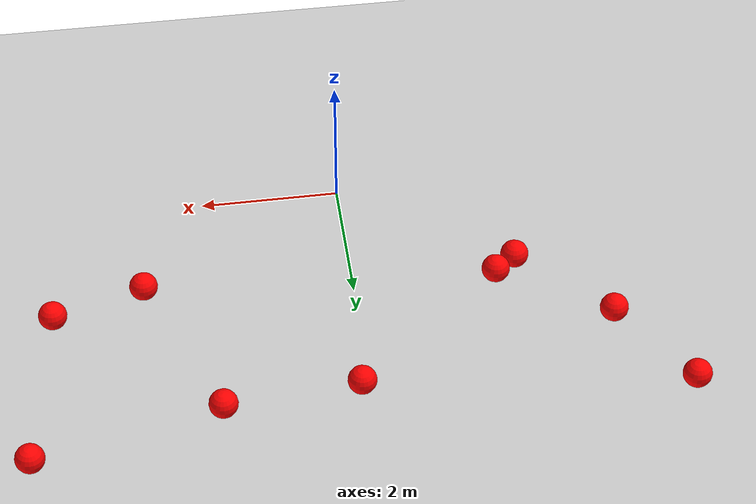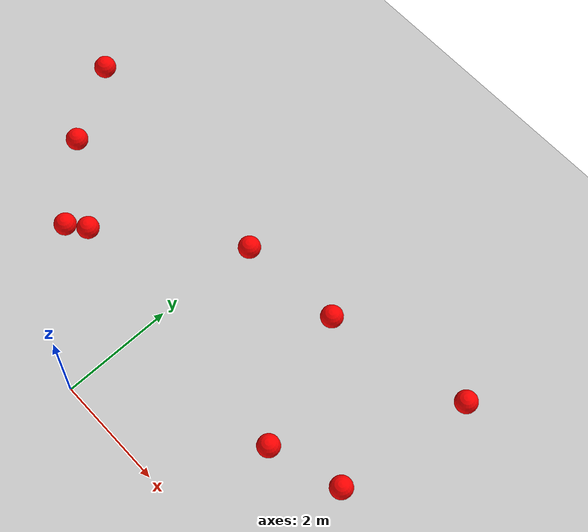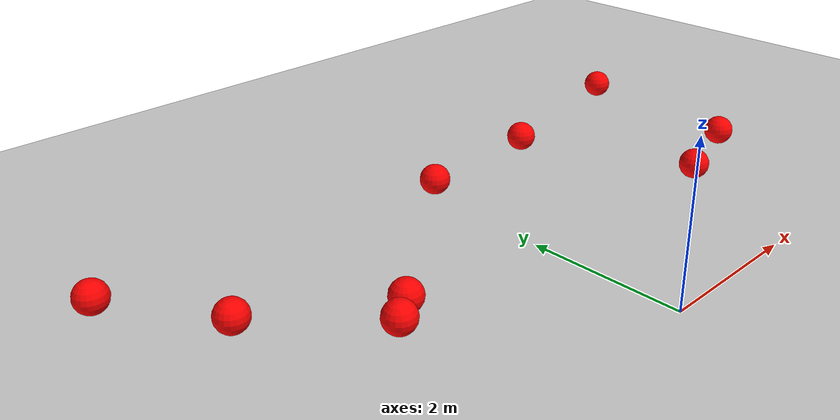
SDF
<sdf version="1.6">
 <world name="default">
  <model name="ground_plane">
   <static>1</static>
   <link name="link">
    <collision name="collision">
     <geometry><plane><normal>0 0 1</normal><size>100 100</size></plane></geometry>
     <surface><friction><ode><mu>100</mu><mu2>50</mu2></ode></friction></surface>
    </collision>
    <visual name="visual">
     <cast_shadows>0</cast_shadows>
     <geometry><plane><normal>0 0 1</normal><size>100 100</size></plane></geometry>
     <material>
      <script><uri>file://media/materials/scripts/gazebo.material</uri><name>Gazebo/Grey</name></script>
     </material>
    </visual>
   </link>
  </model>
  <model name="redball">
   <link name="link">
    <pose>0 0 0.2 0 -0 0</pose>
    <inertial>
     <mass>1</mass>
     <inertia><ixx>0.1</ixx><ixy>0</ixy><ixz>0</ixz><iyy>0.1</iyy><iyz>0</iyz><izz>0.1</izz></inertia>
    </inertial>
    <visual name="visual">
     <geometry><sphere><radius>0.2</radius></sphere></geometry>
     <material>
      <script><name>Gazebo/Grey</name><uri>file://media/materials/scripts/gazebo.material</uri></script>
      <ambient>1 0 0 1</ambient>
      <diffuse>1 0 0 1</diffuse>
      <specular>1 0 0 1</specular>
      <emissive>0 0 0 1</emissive>
      <shader type="vertex"><normal_map>__default__</normal_map></shader>
     </material>
    </visual>
    <collision name="collision">
     <geometry><sphere><radius>0.2</radius></sphere></geometry>
     <surface>
      <friction>
       <ode><mu>1</mu><mu2>1</mu2><fdir1>0 0 0</fdir1><slip1>0</slip1><slip2>0</slip2></ode>
       <torsional>
        <coefficient>1</coefficient>
        <patch_radius>0</patch_radius>
        <surface_radius>0</surface_radius>
        <use_patch_radius>1</use_patch_radius>
        <ode><slip>0</slip></ode>
       </torsional>
      </friction>
      <bounce><restitution_coefficient>0</restitution_coefficient><threshold>1e+06</threshold></bounce>
      <contact>
       <collide_without_contact>0</collide_without_contact>
       <collide_without_contact_bitmask>1</collide_without_contact_bitmask>
       <collide_bitmask>1</collide_bitmask>
       <ode>
        <soft_cfm>0</soft_cfm>
        <soft_erp>0.2</soft_erp>
        <kp>1e+13</kp>
        <kd>1</kd>
        <max_vel>0.01</max_vel>
        <min_depth>0</min_depth>
       </ode>
       <bullet>
        <split_impulse>1</split_impulse>
        <split_impulse_penetration_threshold>-0.01</split_impulse_penetration_threshold>
        <soft_cfm>0</soft_cfm>
        <soft_erp>0.2</soft_erp>
        <kp>1e+13</kp>
        <kd>1</kd>
       </bullet>
      </contact>
     </surface>
    </collision>
   </link>
   <static>0</static>
   <pose>4.553 4.57885 0.000107 1e-06 -0.032773 0</pose>
  </model>
  <model name="redball_1">
   <link name="link">
    <pose>0 0 0.2 0 -0 0</pose>
    <inertial>
     <mass>1</mass>
     <inertia><ixx>0.1</ixx><ixy>0</ixy><ixz>0</ixz><iyy>0.1</iyy><iyz>0</iyz><izz>0.1</izz></inertia>
    </inertial>
    <visual name="visual">
     <geometry><sphere><radius>0.2</radius></sphere></geometry>
     <material>
      <script><name>Gazebo/Grey</name><uri>file://media/materials/scripts/gazebo.material</uri></script>
      <ambient>1 0 0 1</ambient>
      <diffuse>1 0 0 1</diffuse>
      <specular>1 0 0 1</specular>
      <emissive>0 0 0 1</emissive>
      <shader type="vertex"><normal_map>__default__</normal_map></shader>
     </material>
    </visual>
    <collision name="collision">
     <geometry><sphere><radius>0.2</radius></sphere></geometry>
     <surface>
      <friction>
       <ode><mu>1</mu><mu2>1</mu2><fdir1>0 0 0</fdir1><slip1>0</slip1><slip2>0</slip2></ode>
       <torsional>
        <coefficient>1</coefficient>
        <patch_radius>0</patch_radius>
        <surface_radius>0</surface_radius>
        <use_patch_radius>1</use_patch_radius>
        <ode><slip>0</slip></ode>
       </torsional>
      </friction>
      <bounce><restitution_coefficient>0</restitution_coefficient><threshold>1e+06</threshold></bounce>
      <contact>
       <collide_without_contact>0</collide_without_contact>
       <collide_without_contact_bitmask>1</collide_without_contact_bitmask>
       <collide_bitmask>1</collide_bitmask>
       <ode>
        <soft_cfm>0</soft_cfm>
        <soft_erp>0.2</soft_erp>
        <kp>1e+13</kp>
        <kd>1</kd>
        <max_vel>0.01</max_vel>
        <min_depth>0</min_depth>
       </ode>
       <bullet>
        <split_impulse>1</split_impulse>
        <split_impulse_penetration_threshold>-0.01</split_impulse_penetration_threshold>
        <soft_cfm>0</soft_cfm>
        <soft_erp>0.2</soft_erp>
        <kp>1e+13</kp>
        <kd>1</kd>
       </bullet>
      </contact>
     </surface>
    </collision>
   </link>
   <static>0</static>
   <pose>-2.01921 2.03663 0 0 -0 0</pose>
  </model>
  <model name="redball_2">
   <link name="link">
    <pose>0 0 0.2 0 -0 0</pose>
    <inertial>
     <mass>1</mass>
     <inertia><ixx>0.1</ixx><ixy>0</ixy><ixz>0</ixz><iyy>0.1</iyy><iyz>0</iyz><izz>0.1</izz></inertia>
    </inertial>
    <visual name="visual">
     <geometry><sphere><radius>0.2</radius></sphere></geometry>
     <material>
      <script><name>Gazebo/Grey</name><uri>file://media/materials/scripts/gazebo.material</uri></script>
      <ambient>1 0 0 1</ambient>
      <diffuse>1 0 0 1</diffuse>
      <specular>1 0 0 1</specular>
      <emissive>0 0 0 1</emissive>
      <shader type="vertex"><normal_map>__default__</normal_map></shader>
     </material>
    </visual>
    <collision name="collision">
     <geometry><sphere><radius>0.2</radius></sphere></geometry>
     <surface>
      <friction>
       <ode><mu>1</mu><mu2>1</mu2><fdir1>0 0 0</fdir1><slip1>0</slip1><slip2>0</slip2></ode>
       <torsional>
        <coefficient>1</coefficient>
        <patch_radius>0</patch_radius>
        <surface_radius>0</surface_radius>
        <use_patch_radius>1</use_patch_radius>
        <ode><slip>0</slip></ode>
       </torsional>
      </friction>
      <bounce><restitution_coefficient>0</restitution_coefficient><threshold>1e+06</threshold></bounce>
      <contact>
       <collide_without_contact>0</collide_without_contact>
       <collide_without_contact_bitmask>1</collide_without_contact_bitmask>
       <collide_bitmask>1</collide_bitmask>
       <ode>
        <soft_cfm>0</soft_cfm>
        <soft_erp>0.2</soft_erp>
        <kp>1e+13</kp>
        <kd>1</kd>
        <max_vel>0.01</max_vel>
        <min_depth>0</min_depth>
       </ode>
       <bullet>
        <split_impulse>1</split_impulse>
        <split_impulse_penetration_threshold>-0.01</split_impulse_penetration_threshold>
        <soft_cfm>0</soft_cfm>
        <soft_erp>0.2</soft_erp>
        <kp>1e+13</kp>
        <kd>1</kd>
       </bullet>
      </contact>
     </surface>
    </collision>
   </link>
   <static>0</static>
   <pose>-2.33531 1.78833 0 0 -0 0</pose>
  </model>
  <model name="redball_2_clone_2">
   <link name="link">
    <pose>0 0 0.2 0 -0 0</pose>
    <inertial>
     <mass>1</mass>
     <inertia><ixx>0.1</ixx><ixy>0</ixy><ixz>0</ixz><iyy>0.1</iyy><iyz>0</iyz><izz>0.1</izz></inertia>
    </inertial>
    <visual name="visual">
     <geometry><sphere><radius>0.2</radius></sphere></geometry>
     <material>
      <script><name>Gazebo/Grey</name><uri>file://media/materials/scripts/gazebo.material</uri></script>
      <ambient>1 0 0 1</ambient>
      <diffuse>1 0 0 1</diffuse>
      <specular>1 0 0 1</specular>
      <emissive>0 0 0 1</emissive>
      <shader type="vertex"><normal_map>__default__</normal_map></shader>
     </material>
    </visual>
    <collision name="collision">
     <geometry><sphere><radius>0.2</radius></sphere></geometry>
     <surface>
      <friction>
       <ode><mu>1</mu><mu2>1</mu2><fdir1>0 0 0</fdir1><slip1>0</slip1><slip2>0</slip2></ode>
       <torsional>
        <coefficient>1</coefficient>
        <patch_radius>0</patch_radius>
        <surface_radius>0</surface_radius>
        <use_patch_radius>1</use_patch_radius>
        <ode><slip>0</slip></ode>
       </torsional>
      </friction>
      <bounce><restitution_coefficient>0</restitution_coefficient><threshold>1e+06</threshold></bounce>
      <contact>
       <collide_without_contact>0</collide_without_contact>
       <collide_without_contact_bitmask>1</collide_without_contact_bitmask>
       <collide_bitmask>1</collide_bitmask>
       <ode>
        <soft_cfm>0</soft_cfm>
        <soft_erp>0.2</soft_erp>
        <kp>1e+13</kp>
        <kd>1</kd>
        <max_vel>0.01</max_vel>
        <min_depth>0</min_depth>
       </ode>
       <bullet>
        <split_impulse>1</split_impulse>
        <split_impulse_penetration_threshold>-0.01</split_impulse_penetration_threshold>
        <soft_cfm>0</soft_cfm>
        <soft_erp>0.2</soft_erp>
        <kp>1e+13</kp>
        <kd>1</kd>
       </bullet>
      </contact>
     </surface>
    </collision>
   </link>
   <static>0</static>
   <pose>4.20871 2.10315 0 0 -0 0</pose>
  </model>
  <model name="redball_2_clone_3">
   <link name="link">
    <pose>0 0 0.2 0 -0 0</pose>
    <inertial>
     <mass>1</mass>
     <inertia><ixx>0.1</ixx><ixy>0</ixy><ixz>0</ixz><iyy>0.1</iyy><iyz>0</iyz><izz>0.1</izz></inertia>
    </inertial>
    <visual name="visual">
     <geometry><sphere><radius>0.2</radius></sphere></geometry>
     <material>
      <script><name>Gazebo/Grey</name><uri>file://media/materials/scripts/gazebo.material</uri></script>
      <ambient>1 0 0 1</ambient>
      <diffuse>1 0 0 1</diffuse>
      <specular>1 0 0 1</specular>
      <emissive>0 0 0 1</emissive>
      <shader type="vertex"><normal_map>__default__</normal_map></shader>
     </material>
    </visual>
    <collision name="collision">
     <geometry><sphere><radius>0.2</radius></sphere></geometry>
     <surface>
      <friction>
       <ode><mu>1</mu><mu2>1</mu2><fdir1>0 0 0</fdir1><slip1>0</slip1><slip2>0</slip2></ode>
       <torsional>
        <coefficient>1</coefficient>
        <patch_radius>0</patch_radius>
        <surface_radius>0</surface_radius>
        <use_patch_radius>1</use_patch_radius>
        <ode><slip>0</slip></ode>
       </torsional>
      </friction>
      <bounce><restitution_coefficient>0</restitution_coefficient><threshold>1e+06</threshold></bounce>
      <contact>
       <collide_without_contact>0</collide_without_contact>
       <collide_without_contact_bitmask>1</collide_without_contact_bitmask>
       <collide_bitmask>1</collide_bitmask>
       <ode>
        <soft_cfm>0</soft_cfm>
        <soft_erp>0.2</soft_erp>
        <kp>1e+13</kp>
        <kd>1</kd>
        <max_vel>0.01</max_vel>
        <min_depth>0</min_depth>
       </ode>
       <bullet>
        <split_impulse>1</split_impulse>
        <split_impulse_penetration_threshold>-0.01</split_impulse_penetration_threshold>
        <soft_cfm>0</soft_cfm>
        <soft_erp>0.2</soft_erp>
        <kp>1e+13</kp>
        <kd>1</kd>
       </bullet>
      </contact>
     </surface>
    </collision>
   </link>
   <static>0</static>
   <pose>2 4 0 0 -0 0</pose>
  </model>
  <model name="redball_2_clone_4">
   <link name="link">
    <pose>0 0 0.2 0 -0 0</pose>
    <inertial>
     <mass>1</mass>
     <inertia><ixx>0.1</ixx><ixy>0</ixy><ixz>0</ixz><iyy>0.1</iyy><iyz>0</iyz><izz>0.1</izz></inertia>
    </inertial>
    <visual name="visual">
     <geometry><sphere><radius>0.2</radius></sphere></geometry>
     <material>
      <script><name>Gazebo/Grey</name><uri>file://media/materials/scripts/gazebo.material</uri></script>
      <ambient>1 0 0 1</ambient>
      <diffuse>1 0 0 1</diffuse>
      <specular>1 0 0 1</specular>
      <emissive>0 0 0 1</emissive>
      <shader type="vertex"><normal_map>__default__</normal_map></shader>
     </material>
    </visual>
    <collision name="collision">
     <geometry><sphere><radius>0.2</radius></sphere></geometry>
     <surface>
      <friction>
       <ode><mu>1</mu><mu2>1</mu2><fdir1>0 0 0</fdir1><slip1>0</slip1><slip2>0</slip2></ode>
       <torsional>
        <coefficient>1</coefficient>
        <patch_radius>0</patch_radius>
        <surface_radius>0</surface_radius>
        <use_patch_radius>1</use_patch_radius>
        <ode><slip>0</slip></ode>
       </torsional>
      </friction>
      <bounce><restitution_coefficient>0</restitution_coefficient><threshold>1e+06</threshold></bounce>
      <contact>
       <collide_without_contact>0</collide_without_contact>
       <collide_without_contact_bitmask>1</collide_without_contact_bitmask>
       <collide_bitmask>1</collide_bitmask>
       <ode>
        <soft_cfm>0</soft_cfm>
        <soft_erp>0.2</soft_erp>
        <kp>1e+13</kp>
        <kd>1</kd>
        <max_vel>0.01</max_vel>
        <min_depth>0</min_depth>
       </ode>
       <bullet>
        <split_impulse>1</split_impulse>
        <split_impulse_penetration_threshold>-0.01</split_impulse_penetration_threshold>
        <soft_cfm>0</soft_cfm>
        <soft_erp>0.2</soft_erp>
        <kp>1e+13</kp>
        <kd>1</kd>
       </bullet>
      </contact>
     </surface>
    </collision>
   </link>
   <static>0</static>
   <pose>-4.34673 4.33403 0 0 -0 0</pose>
  </model>
  <model name="redball_2_clone_7">
   <link name="link">
    <pose>0 0 0.2 0 -0 0</pose>
    <inertial>
     <mass>1</mass>
     <inertia><ixx>0.1</ixx><ixy>0</ixy><ixz>0</ixz><iyy>0.1</iyy><iyz>0</iyz><izz>0.1</izz></inertia>
    </inertial>
    <visual name="visual">
     <geometry><sphere><radius>0.2</radius></sphere></geometry>
     <material>
      <script><name>Gazebo/Grey</name><uri>file://media/materials/scripts/gazebo.material</uri></script>
      <ambient>1 0 0 1</ambient>
      <diffuse>1 0 0 1</diffuse>
      <specular>1 0 0 1</specular>
      <emissive>0 0 0 1</emissive>
      <shader type="vertex"><normal_map>__default__</normal_map></shader>
     </material>
    </visual>
    <collision name="collision">
     <geometry><sphere><radius>0.2</radius></sphere></geometry>
     <surface>
      <friction>
       <ode><mu>1</mu><mu2>1</mu2><fdir1>0 0 0</fdir1><slip1>0</slip1><slip2>0</slip2></ode>
       <torsional>
        <coefficient>1</coefficient>
        <patch_radius>0</patch_radius>
        <surface_radius>0</surface_radius>
        <use_patch_radius>1</use_patch_radius>
        <ode><slip>0</slip></ode>
       </torsional>
      </friction>
      <bounce><restitution_coefficient>0</restitution_coefficient><threshold>1e+06</threshold></bounce>
      <contact>
       <collide_without_contact>0</collide_without_contact>
       <collide_without_contact_bitmask>1</collide_without_contact_bitmask>
       <collide_bitmask>1</collide_bitmask>
       <ode>
        <soft_cfm>0</soft_cfm>
        <soft_erp>0.2</soft_erp>
        <kp>1e+13</kp>
        <kd>1</kd>
        <max_vel>0.01</max_vel>
        <min_depth>0</min_depth>
       </ode>
       <bullet>
        <split_impulse>1</split_impulse>
        <split_impulse_penetration_threshold>-0.01</split_impulse_penetration_threshold>
        <soft_cfm>0</soft_cfm>
        <soft_erp>0.2</soft_erp>
        <kp>1e+13</kp>
        <kd>1</kd>
       </bullet>
      </contact>
     </surface>
    </collision>
   </link>
   <static>0</static>
   <pose>2.93659 1.71357 0 0 -0 0</pose>
  </model>
  <model name="redball_2_clone_8">
   <link name="link">
    <pose>0 0 0.2 0 -0 0</pose>
    <inertial>
     <mass>1</mass>
     <inertia><ixx>0.1</ixx><ixy>0</ixy><ixz>0</ixz><iyy>0.1</iyy><iyz>0</iyz><izz>0.1</izz></inertia>
    </inertial>
    <visual name="visual">
     <geometry><sphere><radius>0.2</radius></sphere></geometry>
     <material>
      <script><name>Gazebo/Grey</name><uri>file://media/materials/scripts/gazebo.material</uri></script>
      <ambient>1 0 0 1</ambient>
      <diffuse>1 0 0 1</diffuse>
      <specular>1 0 0 1</specular>
      <emissive>0 0 0 1</emissive>
      <shader type="vertex"><normal_map>__default__</normal_map></shader>
     </material>
    </visual>
    <collision name="collision">
     <geometry><sphere><radius>0.2</radius></sphere></geometry>
     <surface>
      <friction>
       <ode><mu>1</mu><mu2>1</mu2><fdir1>0 0 0</fdir1><slip1>0</slip1><slip2>0</slip2></ode>
       <torsional>
        <coefficient>1</coefficient>
        <patch_radius>0</patch_radius>
        <surface_radius>0</surface_radius>
        <use_patch_radius>1</use_patch_radius>
        <ode><slip>0</slip></ode>
       </torsional>
      </friction>
      <bounce><restitution_coefficient>0</restitution_coefficient><threshold>1e+06</threshold></bounce>
      <contact>
       <collide_without_contact>0</collide_without_contact>
       <collide_without_contact_bitmask>1</collide_without_contact_bitmask>
       <collide_bitmask>1</collide_bitmask>
       <ode>
        <soft_cfm>0</soft_cfm>
        <soft_erp>0.2</soft_erp>
        <kp>1e+13</kp>
        <kd>1</kd>
        <max_vel>0.01</max_vel>
        <min_depth>0</min_depth>
       </ode>
       <bullet>
        <split_impulse>1</split_impulse>
        <split_impulse_penetration_threshold>-0.01</split_impulse_penetration_threshold>
        <soft_cfm>0</soft_cfm>
        <soft_erp>0.2</soft_erp>
        <kp>1e+13</kp>
        <kd>1</kd>
       </bullet>
      </contact>
     </surface>
    </collision>
   </link>
   <static>0</static>
   <pose>0.125761 3.83954 0 0 -0 0</pose>
  </model>
  <model name="redball_2_clone_9">
   <link name="link">
    <pose>0 0 0.2 0 -0 0</pose>
    <inertial>
     <mass>1</mass>
     <inertia><ixx>0.1</ixx><ixy>0</ixy><ixz>0</ixz><iyy>0.1</iyy><iyz>0</iyz><izz>0.1</izz></inertia>
    </inertial>
    <visual name="visual">
     <geometry><sphere><radius>0.2</radius></sphere></geometry>
     <material>
      <script><name>Gazebo/Grey</name><uri>file://media/materials/scripts/gazebo.material</uri></script>
      <ambient>1 0 0 1</ambient>
      <diffuse>1 0 0 1</diffuse>
      <specular>1 0 0 1</specular>
      <emissive>0 0 0 1</emissive>
      <shader type="vertex"><normal_map>__default__</normal_map></shader>
     </material>
    </visual>
    <collision name="collision">
     <geometry><sphere><radius>0.2</radius></sphere></geometry>
     <surface>
      <friction>
       <ode><mu>1</mu><mu2>1</mu2><fdir1>0 0 0</fdir1><slip1>0</slip1><slip2>0</slip2></ode>
       <torsional>
        <coefficient>1</coefficient>
        <patch_radius>0</patch_radius>
        <surface_radius>0</surface_radius>
        <use_patch_radius>1</use_patch_radius>
        <ode><slip>0</slip></ode>
       </torsional>
      </friction>
      <bounce><restitution_coefficient>0</restitution_coefficient><threshold>1e+06</threshold></bounce>
      <contact>
       <collide_without_contact>0</collide_without_contact>
       <collide_without_contact_bitmask>1</collide_without_contact_bitmask>
       <collide_bitmask>1</collide_bitmask>
       <ode>
        <soft_cfm>0</soft_cfm>
        <soft_erp>0.2</soft_erp>
        <kp>1e+13</kp>
        <kd>1</kd>
        <max_vel>0.01</max_vel>
        <min_depth>0</min_depth>
       </ode>
       <bullet>
        <split_impulse>1</split_impulse>
        <split_impulse_penetration_threshold>-0.01</split_impulse_penetration_threshold>
        <soft_cfm>0</soft_cfm>
        <soft_erp>0.2</soft_erp>
        <kp>1e+13</kp>
        <kd>1</kd>
       </bullet>
      </contact>
     </surface>
    </collision>
   </link>
   <static>0</static>
   <pose>-3.51134 3 0 0 -0 0</pose>
  </model>
 </world>
</sdf>
